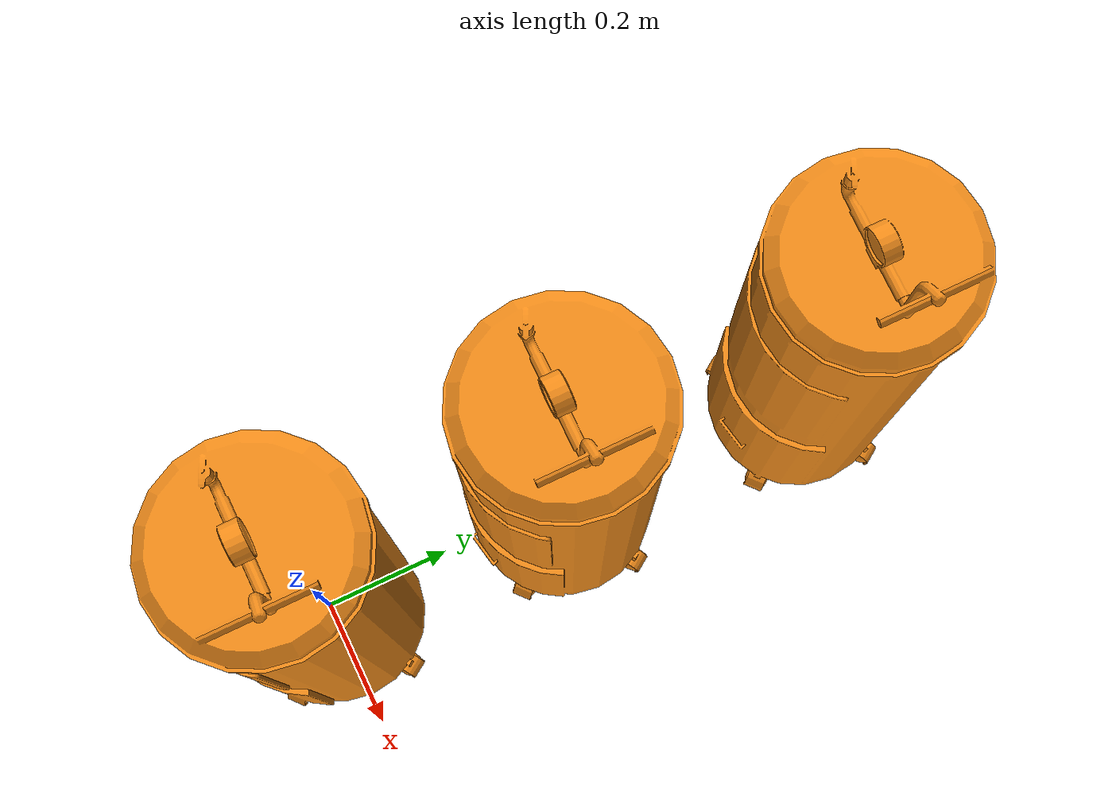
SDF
<?xml version="1.0" ?>
<sdf version="1.5">
  <model name="cylender_stack">

    <pose>0 0 0  0 0 0</pose>

    <static>true</static>
    <link name="link">
      <inertial>
        <mass>54.4311</mass>
        <inertia>
          <ixx>1</ixx>
          <ixy>0</ixy>
          <ixz>0</ixz>
          <iyy>1</iyy>
          <iyz>0</iyz>
          <izz>1</izz>
        </inertia>
      </inertial>

      <collision name="collision">
	    <pose>0 0 0  0 0 0</pose>
        <geometry>
          <mesh>
            <uri>model://cylender_stack/meshes/cylender_stack.stl</uri>
          </mesh>
        </geometry>
      </collision>

      <visual name="visual">
        <geometry>
          <mesh>
            <uri>model://cylender_stack/meshes/cylender_stack.stl</uri>
          </mesh>
        </geometry>
        <material>
           <script>
  <name>Gazebo/Orange</name>
  </script>
        </material>
      </visual>
    </link>
  </model>
</sdf>
